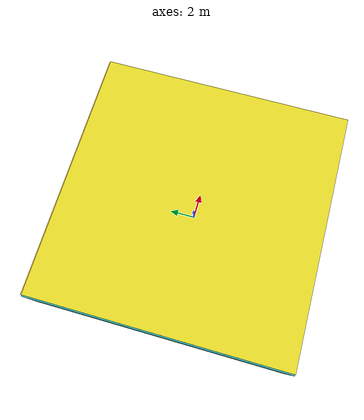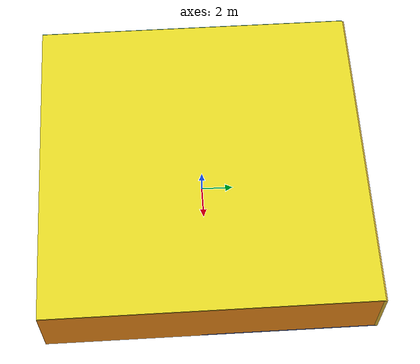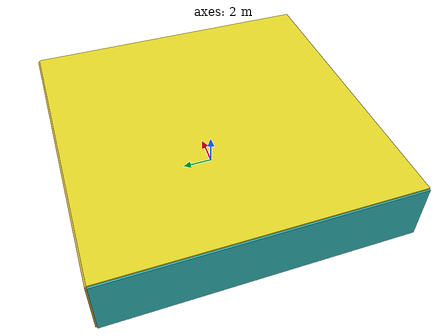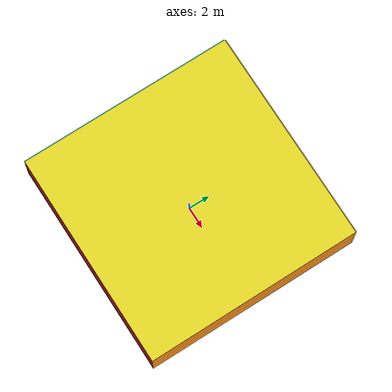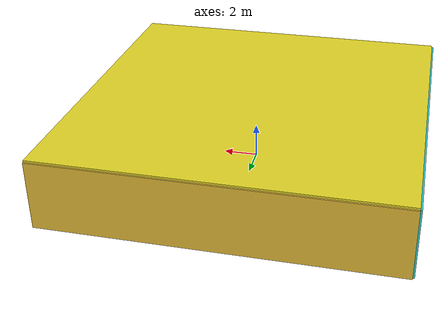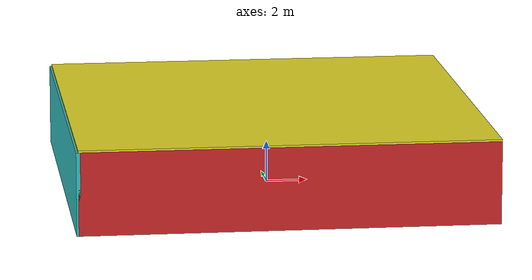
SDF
<sdf version="1.4">
 <world name="default">
  <physics type="ode">
   <max_step_size>0.001</max_step_size>
   <real_time_factor>1</real_time_factor>
   <real_time_update_rate>1000</real_time_update_rate>
   <gravity>0 0 -9.8</gravity>
  </physics>
  <scene><ambient>0.4 0.4 0.4 1</ambient><background>0.7 0.7 0.7 1</background><shadows>1</shadows></scene>
  <model name="Surrounding">
   <static>1</static>
   <link name="Ceiling">
    <collision name="Ceiling_Collision"><geometry><box><size>20 20 0.1</size></box></geometry></collision>
    <visual name="Ceiling_Visual">
     <geometry><box><size>20 20 0.1</size></box></geometry>
     <material>
      <script><uri>file://media/materials/scripts/gazebo.material</uri><name>Gazebo/YellowGlow</name></script>
     </material>
    </visual>
    <pose>0 0 4.05 0 0 0</pose>
   </link>
   <link name="Wall_South">
    <collision name="Wall_South_Collision">
     <geometry><box><size>20 0 4</size></box></geometry>
     <pose>0 0 2 0 -0 0</pose>
    </collision>
    <visual name="Wall_South_Visual">
     <pose>0 0 2 0 -0 0</pose>
     <geometry><box><size>20 0 4</size></box></geometry>
     <material>
      <script><uri>file://media/materials/scripts/gazebo.material</uri><name>Gazebo/Red</name></script>
     </material>
    </visual>
    <velocity_decay><linear>0</linear><angular>0</angular></velocity_decay>
    <pose>0 -10 0 0 -0 0</pose>
   </link>
   <link name="Wall_East">
    <collision name="Wall_21_Collision">
     <geometry><box><size>20 0 4</size></box></geometry>
     <pose>0 0 2 0 -0 0</pose>
    </collision>
    <visual name="Wall_21_Visual">
     <pose>0 0 2 0 -0 0</pose>
     <geometry><box><size>20 0 4</size></box></geometry>
     <material>
      <script><uri>file://media/materials/scripts/gazebo.material</uri><name>Gazebo/Orange</name></script>
     </material>
    </visual>
    <velocity_decay><linear>0</linear><angular>0</angular></velocity_decay>
    <pose>10 0 0 0 -0 1.5708</pose>
   </link>
   <link name="Wall_North">
    <collision name="Wall_22_Collision">
     <geometry><box><size>20 0.2 4</size></box></geometry>
     <pose>0 0 2 0 -0 0</pose>
    </collision>
    <visual name="Wall_22_Visual">
     <pose>0 0 2 0 -0 0</pose>
     <geometry><box><size>20 0.2 4</size></box></geometry>
     <material>
      <script><uri>file://media/materials/scripts/gazebo.material</uri><name>Gazebo/Gold</name></script>
     </material>
    </visual>
    <velocity_decay><linear>0</linear><angular>0</angular></velocity_decay>
    <pose>0 10 0 0 -0 0</pose>
   </link>
   <link name="Wall_West">
    <collision name="Wall_23_Collision">
     <geometry><box><size>20 0.2 4</size></box></geometry>
     <pose>0 0 2 0 -0 0</pose>
    </collision>
    <visual name="Wall_23_Visual">
     <pose>0 0 2 0 -0 0</pose>
     <geometry><box><size>20 0.2 4</size></box></geometry>
     <material>
      <script><uri>file://media/materials/scripts/gazebo.material</uri><name>Gazebo/TurquoiseGlow</name></script>
     </material>
    </visual>
    <velocity_decay><linear>0</linear><angular>0</angular></velocity_decay>
    <pose>-10 0 0 0 0 -1.5708</pose>
   </link>
   <link name="Ground_link">
    <collision name="collision">
     <pose>0 0 .05 0 -0 0</pose>
     <geometry><box><size>20 20 0.1</size></box></geometry>
    </collision>
    <visual name="visual">
     <pose>0 0 .05 0 -0 0</pose>
     <geometry><box><size>20 20 0.1</size></box></geometry>
     <material>
      <script><uri>file://media/materials/scripts/gazebo.material</uri><name>Gazebo/BlueGlow</name></script>
     </material>
    </visual>
   </link>
   <static>1</static>
  </model>
  <spherical_coordinates>
   <surface_model>EARTH_WGS84</surface_model>
   <latitude_deg>0</latitude_deg>
   <longitude_deg>0</longitude_deg>
   <elevation>0</elevation>
   <heading_deg>0</heading_deg>
  </spherical_coordinates>
  <light name="lightball_0" type="diffuse">
   <diffuse>0.8 0.8 0.8 1</diffuse>
   <specular>0.2 0.2 0.2 1</specular>
   <attenuation>
    <range>100</range>
    <constant>0.7</constant>
    <linear>0.01</linear>
    <quadratic>0.001</quadratic>
   </attenuation>
   <direction>-0.5 0.1 -0.9</direction>
   <pose>1.91970591686 -1.51325507784 0.792948532978 0 0 0</pose>
  </light>
  <light name="lightball_1" type="diffuse">
   <diffuse>0.8 0.8 0.8 1</diffuse>
   <specular>0.2 0.2 0.2 1</specular>
   <attenuation>
    <range>100</range>
    <constant>0.7</constant>
    <linear>0.01</linear>
    <quadratic>0.001</quadratic>
   </attenuation>
   <direction>-0.5 0.1 -0.9</direction>
   <pose>6.46948219263 8.20075304263 2.18737886268 0 0 0</pose>
  </light>
  <light name="lightball_2" type="diffuse">
   <diffuse>0.8 0.8 0.8 1</diffuse>
   <specular>0.2 0.2 0.2 1</specular>
   <attenuation>
    <range>100</range>
    <constant>0.7</constant>
    <linear>0.01</linear>
    <quadratic>0.001</quadratic>
   </attenuation>
   <direction>-0.5 0.1 -0.9</direction>
   <pose>-1.46641967677 -8.05960885865 0.830303992663 0 0 0</pose>
  </light>
  <light name="lightball_3" type="diffuse">
   <diffuse>0.8 0.8 0.8 1</diffuse>
   <specular>0.2 0.2 0.2 1</specular>
   <attenuation>
    <range>100</range>
    <constant>0.7</constant>
    <linear>0.01</linear>
    <quadratic>0.001</quadratic>
   </attenuation>
   <direction>-0.5 0.1 -0.9</direction>
   <pose>-2.19643699497 -9.69550173882 1.10164253045 0 0 0</pose>
  </light>
  <light name="lightball_4" type="diffuse">
   <diffuse>0.8 0.8 0.8 1</diffuse>
   <specular>0.2 0.2 0.2 1</specular>
   <attenuation>
    <range>100</range>
    <constant>0.7</constant>
    <linear>0.01</linear>
    <quadratic>0.001</quadratic>
   </attenuation>
   <direction>-0.5 0.1 -0.9</direction>
   <pose>6.08493522451 -9.27592504169 1.89671140449 0 0 0</pose>
  </light>
  <light name="lightball_5" type="diffuse">
   <diffuse>0.8 0.8 0.8 1</diffuse>
   <specular>0.2 0.2 0.2 1</specular>
   <attenuation>
    <range>100</range>
    <constant>0.7</constant>
    <linear>0.01</linear>
    <quadratic>0.001</quadratic>
   </attenuation>
   <direction>-0.5 0.1 -0.9</direction>
   <pose>-6.39263103434 5.51748967404 1.83757880214 0 0 0</pose>
  </light>
  <light name="lightball_6" type="diffuse">
   <diffuse>0.8 0.8 0.8 1</diffuse>
   <specular>0.2 0.2 0.2 1</specular>
   <attenuation>
    <range>100</range>
    <constant>0.7</constant>
    <linear>0.01</linear>
    <quadratic>0.001</quadratic>
   </attenuation>
   <direction>-0.5 0.1 -0.9</direction>
   <pose>0.379534715866 4.35735135007 2.81465897678 0 0 0</pose>
  </light>
  <light name="lightball_7" type="diffuse">
   <diffuse>0.8 0.8 0.8 1</diffuse>
   <specular>0.2 0.2 0.2 1</specular>
   <attenuation>
    <range>100</range>
    <constant>0.7</constant>
    <linear>0.01</linear>
    <quadratic>0.001</quadratic>
   </attenuation>
   <direction>-0.5 0.1 -0.9</direction>
   <pose>-9.19051121777 0.487314074589 1.00577992789 0 0 0</pose>
  </light>
  <light name="lightball_8" type="diffuse">
   <diffuse>0.8 0.8 0.8 1</diffuse>
   <specular>0.2 0.2 0.2 1</specular>
   <attenuation>
    <range>100</range>
    <constant>0.7</constant>
    <linear>0.01</linear>
    <quadratic>0.001</quadratic>
   </attenuation>
   <direction>-0.5 0.1 -0.9</direction>
   <pose>5.31650376354 5.00995680121 1.8479837007 0 0 0</pose>
  </light>
  <light name="lightball_9" type="diffuse">
   <diffuse>0.8 0.8 0.8 1</diffuse>
   <specular>0.2 0.2 0.2 1</specular>
   <attenuation>
    <range>100</range>
    <constant>0.7</constant>
    <linear>0.01</linear>
    <quadratic>0.001</quadratic>
   </attenuation>
   <direction>-0.5 0.1 -0.9</direction>
   <pose>6.63625073295 6.23617972732 2.08737774221 0 0 0</pose>
  </light>
  <light name="lightball_10" type="diffuse">
   <diffuse>0.8 0.8 0.8 1</diffuse>
   <specular>0.2 0.2 0.2 1</specular>
   <attenuation>
    <range>100</range>
    <constant>0.7</constant>
    <linear>0.01</linear>
    <quadratic>0.001</quadratic>
   </attenuation>
   <direction>-0.5 0.1 -0.9</direction>
   <pose>8.46503753883 -9.91106825502 3.48098209774 0 0 0</pose>
  </light>
  <light name="lightball_11" type="diffuse">
   <diffuse>0.8 0.8 0.8 1</diffuse>
   <specular>0.2 0.2 0.2 1</specular>
   <attenuation>
    <range>100</range>
    <constant>0.7</constant>
    <linear>0.01</linear>
    <quadratic>0.001</quadratic>
   </attenuation>
   <direction>-0.5 0.1 -0.9</direction>
   <pose>-2.87404883451 -2.89015519258 1.946711077 0 0 0</pose>
  </light>
  <include><uri>model://cabinet</uri><pose>-8.21069481025 5.02632832904 0 0 0 1.72052106301</pose></include>
  <include>
   <uri>model://robocup_3Dsim_goal</uri>
   <pose>-1.58294745123 -0.33501334419 0 0 0 0.30452807092</pose>
  </include>
  <include>
   <uri>model://construction_cone</uri>
   <pose>-1.97731920839 3.5132091952 0 0 0 0.219247041508</pose>
  </include>
  <include>
   <uri>model://textured_shapes</uri>
   <pose>6.41803655886 -2.05427366295 0 0 0 0.556780252161</pose>
  </include>
 </world>
</sdf>

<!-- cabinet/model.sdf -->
<sdf version="1.5">
  <model name="cabinet">
    <static>true</static>
    <link name="cabinet_bottom_plate">
      <inertial>
        <pose>0 0 -1 0 0 0</pose>
        <inertia>
          <ixx>2.050000</ixx>
          <ixy>0</ixy>
          <ixz>0</ixz>
          <iyy>2.050000</iyy>
          <iyz>0</iyz>
          <izz>2.050000</izz>
        </inertia>
        <mass>25.000000</mass>
      </inertial>
      <collision name="cabinet_bottom_plate_geom">
        <pose>0 0 0.010000 0 0 0</pose>
        <geometry>
          <box>
            <size>0.450000 0.450000 0.020000</size>
          </box>
        </geometry>
      </collision>
      <visual name="cabinet_bottom_plate_geom_visual">
        <pose>0 0 0.010000 0 0 0</pose>
        <geometry>
          <box>
            <size>0.450000 0.450000 0.020000</size>
          </box>
        </geometry>
        <material>
          <script>
            <uri>model://media/materials/scripts/gazebo.material</uri>
            <name>Gazebo/Wood</name>
          </script>
        </material>
      </visual>
      <collision name="cabinet_bottom_plate_geom_cabinet_back_plate">
        <pose>0.235000 0 0.510000 0 0 0</pose>
        <geometry>
          <box>
            <size>0.020000 0.450000 1.020000</size>
          </box>
        </geometry>
      </collision>
      <visual name="cabinet_bottom_plate_geom_cabinet_back_plate_visual">
        <pose>0.235000 0 0.510000 0 0 0</pose>
        <geometry>
          <box>
            <size>0.020000 0.450000 1.020000</size>
          </box>
        </geometry>
        <material>
          <script>
            <uri>model://media/materials/scripts/gazebo.material</uri>
            <name>Gazebo/Wood</name>
          </script>
        </material>
      </visual>
      <collision name="cabinet_bottom_plate_geom_cabinet_left_plate">
        <pose>0 0.235000 0.510000 0 0 0</pose>
        <geometry>
          <box>
            <size>0.450000 0.020000 1.020000</size>
          </box>
        </geometry>
      </collision>
      <visual name="cabinet_bottom_plate_geom_cabinet_left_plate_visual">
        <pose>0 0.235000 0.510000 0 0 0</pose>
        <geometry>
          <box>
            <size>0.450000 0.020000 1.020000</size>
          </box>
        </geometry>
        <material>
          <script>
            <uri>model://media/materials/scripts/gazebo.material</uri>
            <name>Gazebo/Wood</name>
          </script>
        </material>
      </visual>
      <collision name="cabinet_bottom_plate_geom_cabinet_middle_plate">
        <pose>0 0 0.510000 0 0 0</pose>
        <geometry>
          <box>
            <size>0.450000 0.450000 0.020000</size>
          </box>
        </geometry>
      </collision>
      <visual name="cabinet_bottom_plate_geom_cabinet_middle_plate_visual">
        <pose>0 0 0.510000 0 0 0</pose>
        <geometry>
          <box>
            <size>0.450000 0.450000 0.020000</size>
          </box>
        </geometry>
        <material>
          <script>
            <uri>model://media/materials/scripts/gazebo.material</uri>
            <name>Gazebo/Wood</name>
          </script>
        </material>
      </visual>
      <collision name="cabinet_bottom_plate_geom_cabinet_right_plate">
        <pose>0 -0.235000 0.510000 0 0 0</pose>
        <geometry>
          <box>
            <size>0.450000 0.020000 1.020000</size>
          </box>
        </geometry>
      </collision>
      <visual name="cabinet_bottom_plate_geom_cabinet_right_plate_visual">
        <pose>0 -0.235000 0.510000 0 0 0</pose>
        <geometry>
          <box>
            <size>0.450000 0.020000 1.020000</size>
          </box>
        </geometry>
        <material>
          <script>
            <uri>model://media/materials/scripts/gazebo.material</uri>
            <name>Gazebo/Wood</name>
          </script>
        </material>
      </visual>
      <collision name="cabinet_bottom_plate_geom_cabinet_top_plate">
        <pose>0 0 1.010000 0 0 0</pose>
        <geometry>
          <box>
            <size>0.450000 0.450000 0.020000</size>
          </box>
        </geometry>
      </collision>
      <visual name="cabinet_bottom_plate_geom_cabinet_top_plate_visual">
        <pose>0 0 1.010000 0 0 0</pose>
        <geometry>
          <box>
            <size>0.450000 0.450000 0.020000</size>
          </box>
        </geometry>
        <material>
          <script>
            <uri>model://media/materials/scripts/gazebo.material</uri>
            <name>Gazebo/Wood</name>
          </script>
        </material>
      </visual>
    </link>
  </model>
</sdf>

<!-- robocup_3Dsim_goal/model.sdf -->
<sdf version="1.5">
  <model name="robocup_3d_goal">
    <static>true</static>
    <link name="left_post">
      <pose>0 1.05 0.45 0 0 0</pose>
      <collision name="collision">
        <geometry>
          <cylinder>
            <radius>0.05</radius>
            <length>0.9</length>
          </cylinder>
        </geometry>
      </collision>
      <visual name="visual">
        <geometry>
          <cylinder>
            <radius>0.05</radius>
            <length>0.9</length>
          </cylinder>
        </geometry>
        <material>
          <script>
            <uri>file://media/materials/scripts/gazebo.material</uri>
            <name>Gazebo/ZincYellow</name>
          </script>
        </material>
      </visual>
    </link>
    <link name="left_support_horiz_lower">
      <pose>0.30 1.05 0.01 0 0 0</pose>
      <collision name="collision">
        <geometry>
          <box>
            <size>0.50 0.02 0.02</size>
          </box>
        </geometry>
      </collision>
      <visual name="visual">
        <geometry>
          <box>
            <size>0.50 0.02 0.02</size>
          </box>
        </geometry>
        <material>
          <script>
            <uri>file://media/materials/scripts/gazebo.material</uri>
            <name>Gazebo/White</name>
          </script>
        </material>
      </visual>
    </link>
    <link name="left_support_horiz_upper">
      <pose>0.30 1.05 0.79 0 0 0</pose>
      <collision name="collision">
        <geometry>
          <box>
            <size>0.50 0.02 0.02</size>
          </box>
        </geometry>
      </collision>
      <visual name="visual">
        <geometry>
          <box>
            <size>0.50 0.02 0.02</size>
          </box>
        </geometry>
        <material>
          <script>
            <uri>file://media/materials/scripts/gazebo.material</uri>
            <name>Gazebo/White</name>
          </script>
        </material>
      </visual>
    </link>
    <link name="left_support_vertical">
      <pose>0.56 1.05 0.4 0 1.5708 0</pose>
      <collision name="collision">
        <geometry>
          <box>
            <size>0.80 0.02 0.02</size>
          </box>
        </geometry>
      </collision>
      <visual name="visual">
        <geometry>
          <box>
            <size>0.80 0.02 0.02</size>
          </box>
        </geometry>
        <material>
          <script>
            <uri>file://media/materials/scripts/gazebo.material</uri>
            <name>Gazebo/White</name>
          </script>
        </material>
      </visual>
    </link>
    <link name="right_support_horiz_lower">
      <pose>0.30 -1.05 0.01 0 0 0</pose>
      <collision name="collision">
        <geometry>
          <box>
            <size>0.50 0.02 0.02</size>
          </box>
        </geometry>
      </collision>
      <visual name="visual">
        <geometry>
          <box>
            <size>0.50 0.02 0.02</size>
          </box>
        </geometry>
        <material>
          <script>
            <uri>file://media/materials/scripts/gazebo.material</uri>
            <name>Gazebo/White</name>
          </script>
        </material>
      </visual>
    </link>
    <link name="right_support_horiz_upper">
      <pose>0.30 -1.05 0.79 0 0 0</pose>
      <collision name="collision">
        <geometry>
          <box>
            <size>0.50 0.02 0.02</size>
          </box>
        </geometry>
      </collision>
      <visual name="visual">
        <geometry>
          <box>
            <size>0.50 0.02 0.02</size>
          </box>
        </geometry>
        <material>
          <script>
            <uri>file://media/materials/scripts/gazebo.material</uri>
            <name>Gazebo/White</name>
          </script>
        </material>
      </visual>
    </link>
    <link name="right_support_vertical">
      <pose>0.56 -1.05 0.4 0 1.5708 0</pose>
      <collision name="collision">
        <geometry>
          <box>
            <size>0.80 0.02 0.02</size>
          </box>
        </geometry>
      </collision>
      <visual name="visual">
        <geometry>
          <box>
            <size>0.80 0.02 0.02</size>
          </box>
        </geometry>
        <material>
          <script>
            <uri>file://media/materials/scripts/gazebo.material</uri>
            <name>Gazebo/White</name>
          </script>
        </material>
      </visual>
    </link>
    <link name="center_support_horiz_lower">
      <pose>0.56 0 0.01 0 1.5708 0</pose>
      <collision name="collision">
        <geometry>
          <box>
            <size>0.02 2.08 0.02</size>
          </box>
        </geometry>
      </collision>
      <visual name="visual">
        <geometry>
          <box>
            <size>0.02 2.08 0.02</size>
          </box>
        </geometry>
        <material>
          <script>
            <uri>file://media/materials/scripts/gazebo.material</uri>
            <name>Gazebo/White</name>
          </script>
        </material>
      </visual>
    </link>
    <link name="center_support_horiz_upper">
      <pose>0.56 0 0.79 0 1.5708 0</pose>
      <collision name="collision">
        <geometry>
          <box>
            <size>0.02 2.08 0.02</size>
          </box>
        </geometry>
      </collision>
      <visual name="visual">
        <geometry>
          <box>
            <size>0.02 2.08 0.02</size>
          </box>
        </geometry>
        <material>
          <script>
            <uri>file://media/materials/scripts/gazebo.material</uri>
            <name>Gazebo/White</name>
          </script>
        </material>
      </visual>
    </link>
    <link name="right_post">
      <pose>0 -1.05 0.45 0 0 0</pose>
      <collision name="collision">
        <geometry>
          <cylinder>
            <radius>0.05</radius>
            <length>0.9</length>
          </cylinder>
        </geometry>
      </collision>
      <visual name="visual">
        <geometry>
          <cylinder>
            <radius>0.05</radius>
            <length>0.9</length>
          </cylinder>
        </geometry>
        <material>
          <script>
            <uri>file://media/materials/scripts/gazebo.material</uri>
            <name>Gazebo/ZincYellow</name>
          </script>
        </material>
      </visual>
    </link>
    <link name="crossbar">
      <pose>0 0 0.85 1.57 1.57 0</pose>
      <collision name="collision">
        <geometry>
          <cylinder>
            <radius>0.05</radius>
            <length>2.0</length>
          </cylinder>
        </geometry>
      </collision>
      <visual name="visual">
        <geometry>
          <cylinder>
            <radius>0.05</radius>
            <length>2.0</length>
          </cylinder>
        </geometry>
        <material>
          <script>
            <uri>file://media/materials/scripts/gazebo.material</uri>
            <name>Gazebo/ZincYellow</name>
          </script>
        </material>
      </visual>
    </link>
    <link name="center_net">
      <pose>0.56 0 0.40 0 0 0</pose>
      <collision name="collision">
        <geometry>
          <box>
            <size>0.01 2.1 0.80</size>
          </box>
        </geometry>
      </collision>
      <visual name="visual">
        <geometry>
          <box>
            <size>0.01 2.1 0.80</size>
          </box>
        </geometry>
        <material>
          <script>
            <uri>model://../model_source/models/robocup09_spl_field/materials/scripts/</uri>
            <uri>model://../model_source/models/robocup09_spl_field/materials/textures/</uri>
            <name>RoboCup/Net</name>
          </script>
        </material>
      </visual>
    </link>
    <link name="left_net">
      <pose>0.30 1.05 0.40 0 0 0</pose>
      <collision name="collision">
        <geometry>
          <box>
            <size>0.50 0.01 0.76</size>
          </box>
        </geometry>
      </collision>
      <visual name="visual">
        <geometry>
          <box>
            <size>0.50 0.01 0.76</size>
          </box>
        </geometry>
        <material>
          <script>
            <uri>model://../model_source/models/robocup09_spl_field/materials/scripts/</uri>
            <uri>model://../model_source/models/robocup09_spl_field/materials/textures/</uri>
            <name>RoboCup/Net</name>
          </script>
        </material>
      </visual>
    </link>
    <link name="right_net">
      <pose>0.30 -1.05 0.40 0 0 0</pose>
      <collision name="collision">
        <geometry>
          <box>
            <size>0.50 0.01 0.76</size>
          </box>
        </geometry>
      </collision>
      <visual name="visual">
        <geometry>
          <box>
            <size>0.50 0.01 0.76</size>
          </box>
        </geometry>
        <material>
          <script>
            <uri>model://../model_source/models/robocup09_spl_field/materials/scripts/</uri>
            <uri>model://../model_source/models/robocup09_spl_field/materials/textures/</uri>
            <name>RoboCup/Net</name>
          </script>
        </material>
      </visual>
    </link>
  </model>
</sdf>

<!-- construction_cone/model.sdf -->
<sdf version="1.5">
  <model name="Construction Cone">
    <link name="link">
      <collision name="collision">
        <geometry>
          <mesh>
            <scale>10 10 10</scale>
            <uri>file://isr-testbed/construction_cone/meshes/construction_cone.dae</uri>
          </mesh>
        </geometry>
      </collision>
      <visual name="visual">
        <geometry>
          <mesh>
            <scale>10 10 10</scale>
            <uri>file://isr-testbed/construction_cone/meshes/construction_cone.dae</uri>
          </mesh>
        </geometry>
      </visual>
    </link>
  </model>
</sdf>

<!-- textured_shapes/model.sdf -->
<sdf version="1.6">
  <model name="textured_shapes">
    <pose>0 0 0.5 0 0 0</pose>
    <link name="box">
      <pose>0 -1.5 0 0 0 0</pose>
      <collision name="collision">
        <geometry>
          <box>
            <size>1 1 1</size>
          </box>
        </geometry>
      </collision>
      <visual name="visual">
        <geometry>
          <box>
            <size>1 1 1</size>
          </box>
        </geometry>
        <material>
          <script>
            <uri>model://../model_source/models/textured_shapes/materials/scripts</uri>
            <uri>model://../model_source/models/textured_shapes/materials/textures</uri>
            <name>TexturedShape/Squares</name>
          </script>
        </material>
      </visual>
    </link>
    <link name="sphere">
      <collision name="collision">
        <geometry>
          <sphere>
            <radius>0.5</radius>
          </sphere>
        </geometry>
      </collision>
      <visual name="visual">
        <geometry>
          <sphere>
            <radius>0.5</radius>
          </sphere>
        </geometry>
        <material>
          <script>
            <uri>model://../model_source/models/textured_shapes/materials/scripts</uri>
            <uri>model://../model_source/models/textured_shapes/materials/textures</uri>
            <name>TexturedShape/Squares</name>
          </script>
        </material>
      </visual>
    </link>
    <link name="cylinder">
      <pose>0 1.5 0 0 0 0</pose>
      <collision name="collision">
        <geometry>
          <cylinder>
            <radius>0.5</radius>
            <length>1</length>
          </cylinder>
        </geometry>
      </collision>
      <visual name="visual">
        <geometry>
          <cylinder>
            <radius>0.5</radius>
            <length>1</length>
          </cylinder>
        </geometry>
        <material>
          <script>
            <uri>model://../model_source/models/textured_shapes/materials/scripts</uri>
            <uri>model://../model_source/models/textured_shapes/materials/textures</uri>
            <name>TexturedShape/Squares</name>
          </script>
        </material>
      </visual>
    </link>
  </model>
</sdf>
